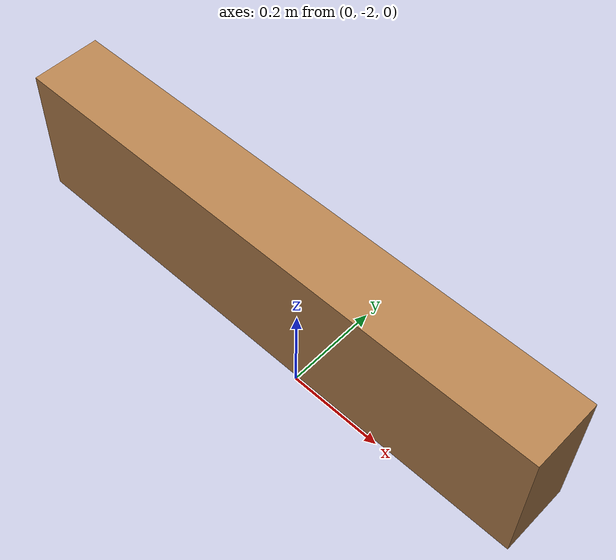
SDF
<?xml version='1.0'?>
<sdf version='1.7'>
  <model name='wall_cm'>
    <pose>-0.105 -0.9975 0 0 -0 0</pose>
    <link name='Wall_6'>
      <collision name='Wall_6_Collision'>
        <geometry>
          <box>
            <size>1.2 0.15 0.3</size>
          </box>
        </geometry>
        <pose>0 0 0.15 0 -0 0</pose>
      </collision>
      <visual name='Wall_6_Visual'>
        <pose>0 0 0.15 0 -0 0</pose>
        <geometry>
          <box>
            <size>1.2 0.15 0.3</size>
          </box>
        </geometry>
        <material>
          <script>
            <uri>file://media/materials/scripts/gazebo.material</uri>
            <name>Gazebo/Wood</name>
          </script>
          <ambient>1 1 1 1</ambient>
        </material>
        <meta>
          <layer>0</layer>
        </meta>
      </visual>
      <pose>0 -0.9225 0 0 -0 0</pose>
    </link>
    <static>1</static>
  </model>
</sdf>
